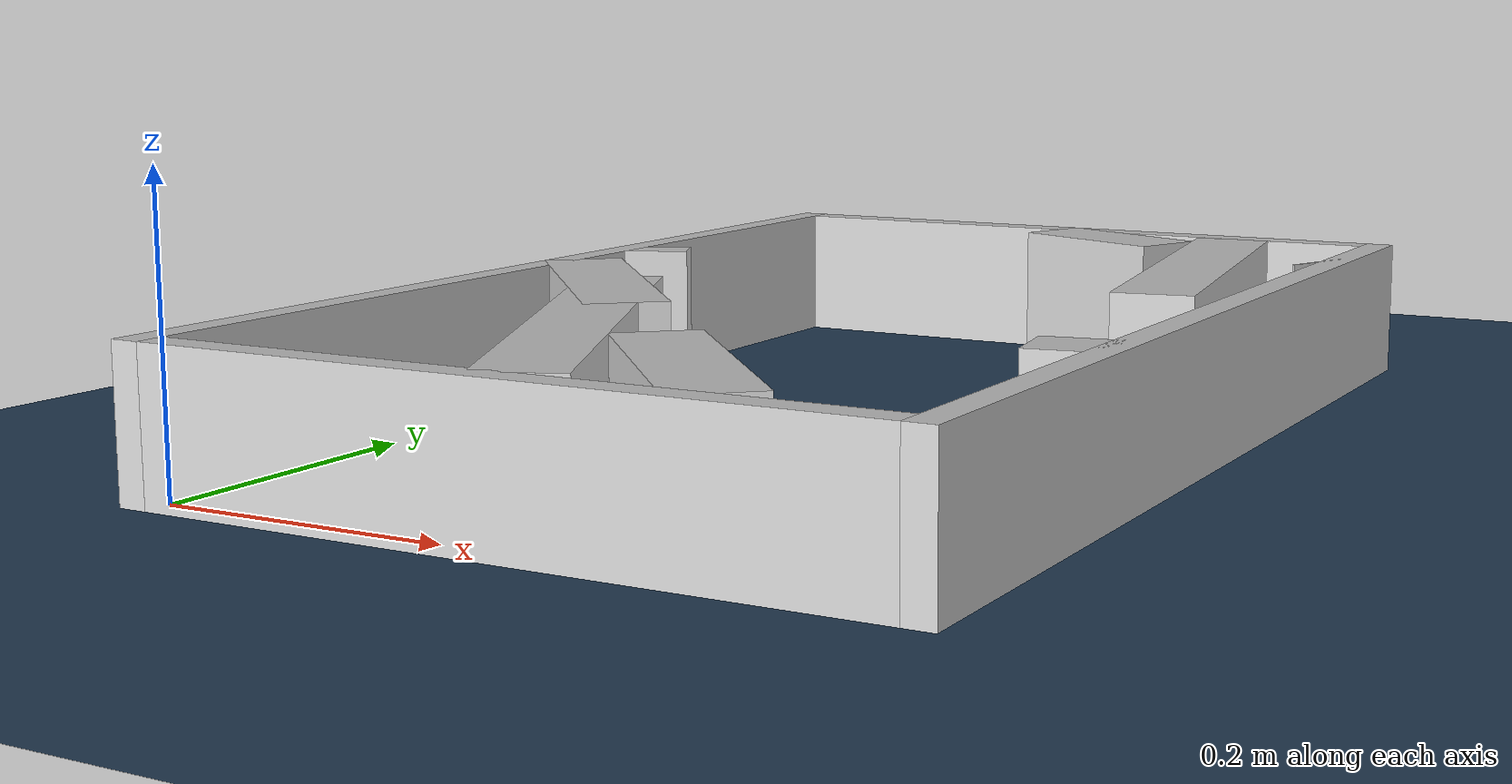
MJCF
<?xml version="1.0" ?>
<mujoco model="generated_real_template">
  <compiler angle="degree"/>
  <option timestep="0.002" integrator="implicitfast" iterations="100" cone="elliptic"/>
  <default>
    <geom density="1"/>
  </default>
  <asset>
    <texture builtin="gradient" height="3072" rgb1="0.3 0.5 0.7" rgb2="0 0 0" type="skybox" width="512"/>
    <texture builtin="checker" height="300" mark="edge" markrgb="0.8 0.8 0.8" name="groundplane" rgb1="0.2 0.3 0.4" rgb2="0.1 0.2 0.3" type="2d" width="300"/>
    <material name="groundplane" reflectance="0.2" texrepeat="5 5" texture="groundplane" texuniform="true"/>
  </asset>
  <worldbody>
    <light dir="0 0 -1" directional="true" pos="0 0 1.5"/>
    <geom name="floor" type="plane" condim="4" friction="0.5 0.005 0.001" material="groundplane" size="0 0 0.05"/>
    <body name="walls">
      <geom name="wall_boundary_left" type="box" condim="4" friction="1.0 0.005 0.0001" rgba="0.8 0.8 0.8 1" pos="-0.010000 0.387500 0.050000" euler="0 0 0.000000" size="0.010000 0.407500 0.050000"/>
      <geom name="wall_boundary_right" type="box" condim="4" friction="1.0 0.005 0.0001" rgba="0.8 0.8 0.8 1" pos="0.500000 0.387500 0.050000" euler="0 0 0.000000" size="0.010000 0.407500 0.050000"/>
      <geom name="wall_boundary_bottom" type="box" condim="4" friction="1.0 0.005 0.0001" rgba="0.8 0.8 0.8 1" pos="0.245000 -0.010000 0.050000" euler="0 0 0.000000" size="0.245000 0.010000 0.050000"/>
      <geom name="wall_boundary_top" type="box" condim="4" friction="1.0 0.005 0.0001" rgba="0.8 0.8 0.8 1" pos="0.245000 0.785000 0.050000" euler="0 0 0.000000" size="0.245000 0.010000 0.050000"/>
      <geom name="wall_inner_1_1" type="box" condim="4" friction="1.0 0.005 0.0001" rgba="0.8 0.8 0.8 1" pos="0.079983 0.330961 0.050000" euler="0 0 -48.010402" size="0.117786 0.028500 0.050000"/>
      <geom name="wall_inner_1_2" type="box" condim="4" friction="1.0 0.005 0.0001" rgba="0.8 0.8 0.8 1" pos="0.309259 0.076230 0.050000" euler="0 0 -48.010402" size="0.102561 0.028500 0.050000"/>
      <geom name="wall_inner_2_1" type="box" condim="4" friction="1.0 0.005 0.0001" rgba="0.8 0.8 0.8 1" pos="0.414064 0.607736 0.050000" euler="0 0 -80.500059" size="0.169590 0.028500 0.050000"/>
      <geom name="wall_inner_2_2" type="box" condim="4" friction="1.0 0.005 0.0001" rgba="0.8 0.8 0.8 1" pos="0.478021 0.225541 0.050000" euler="0 0 -80.500059" size="0.023441 0.028500 0.050000"/>
      <geom name="wall_inner_3_1" type="box" condim="4" friction="1.0 0.005 0.0001" rgba="0.8 0.8 0.8 1" pos="0.291650 0.743848 0.050000" euler="0 0 -22.454832" size="0.064961 0.028500 0.050000"/>
      <geom name="wall_inner_3_2" type="box" condim="4" friction="1.0 0.005 0.0001" rgba="0.8 0.8 0.8 1" pos="0.489298 0.662162 0.050000" euler="0 0 -22.454832" size="0.000760 0.028500 0.050000"/>
      <geom name="wall_inner_4_1" type="box" condim="4" friction="1.0 0.005 0.0001" rgba="0.8 0.8 0.8 1" pos="0.167909 0.175857 0.050000" euler="0 0 116.061880" size="0.195762 0.028500 0.050000"/>
      <geom name="wall_inner_4_2" type="box" condim="4" friction="1.0 0.005 0.0001" rgba="0.8 0.8 0.8 1" pos="0.011399 0.495872 0.050000" euler="0 0 116.061880" size="0.013193 0.028500 0.050000"/>
    </body>
  </worldbody>
</mujoco>
